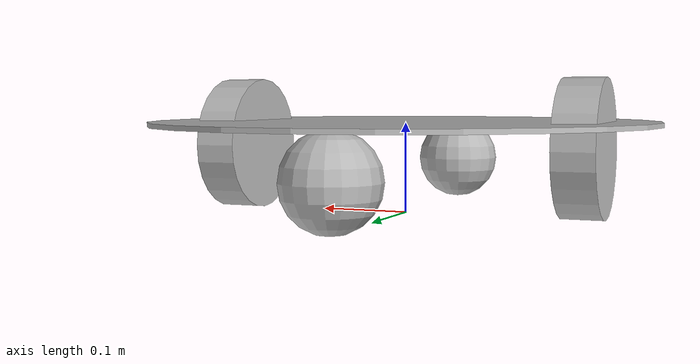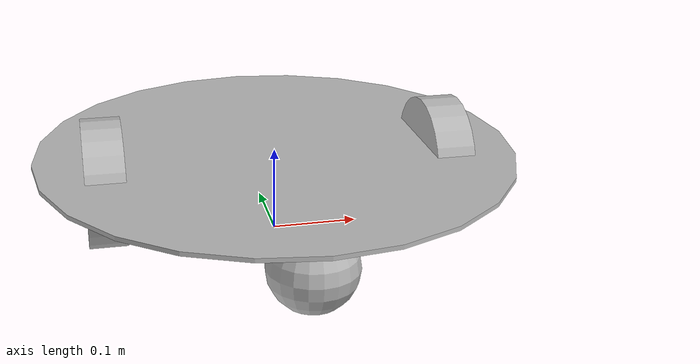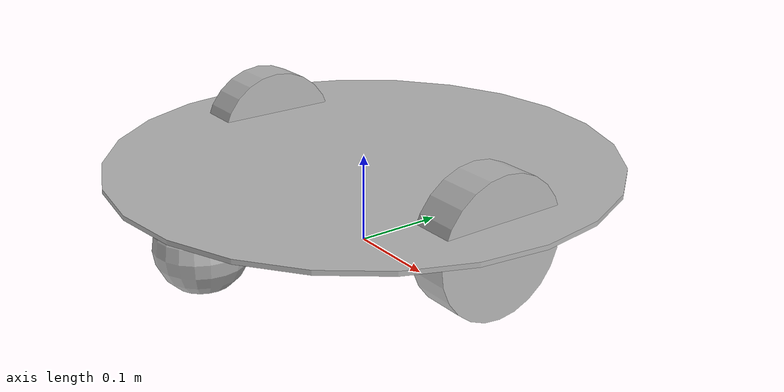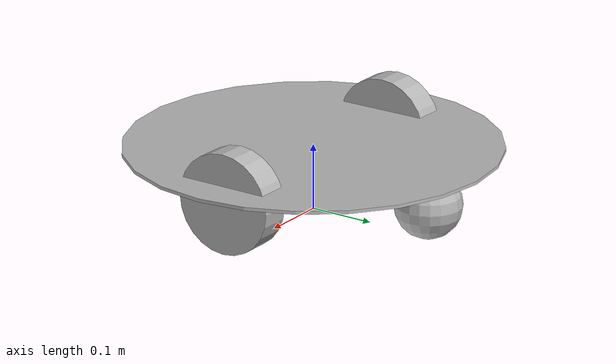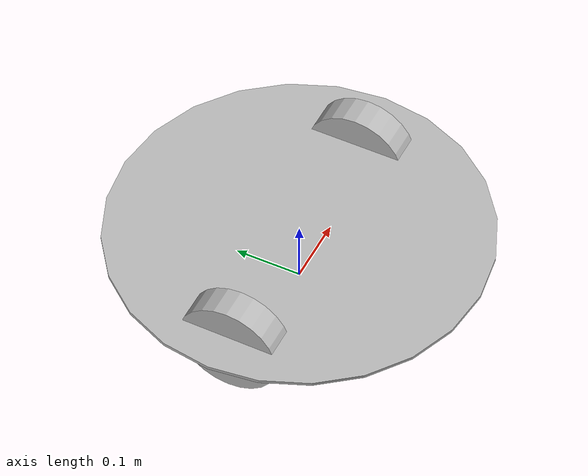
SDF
<?xml version='1.0'?>
<sdf version='1.4'>
  <model name="robot">

  <static>false</static> <!--this ignore physics of the robot-->

  <!--now we are going to create the base frame of the robot-->
  <link name='chassis'>
    <pose>0 0 .1 0 0 0</pose> <!--x y z roll pitch yaw (in radians)-->

    <!--Collision is about how the engine collision will identify the body, in this case, like a box with the size of 0.4 0.2 0.1-->

    <collision name='collision'>
      <geometry>
        <cylinder>
          <radius>.28</radius>
          <length>0.005</length>
        </cylinder>
      </geometry>
    </collision>

    <!--Visual is what we see. Generally the VISUAL and COLLISION are equal-->

    <visual name='visual'>
      <geometry>
        <cylinder>
          <radius>.28</radius>
          <length>0.005</length>
        </cylinder>
      </geometry>
    </visual>

    <collision name='caster1_collision'>
      <pose>0 -.2 -.05 0 0 0</pose>
      <geometry>
        <sphere>
          <radius>0.05</radius>
        </sphere>
      </geometry>

      <surface>
        <friction>
          <ode> <!--ODE = Open Dynamics Engine, is the engine motor that gazebo use to simulate the physics-->

            <mu>0</mu> <!-- is the Coulomb friction coefficient for the first friction direction-->
            <mu2>0</mu2> <!-- is the friction coefficient for the second friction direction (perpendicular to the first friction direction). -->

            <!--Search about these ones-->
            <slip1>1.0</slip1>
            <slip2>1.0</slip2>
          </ode>
        </friction>
      </surface>
    </collision>

    <visual name='caster1_visual'>
      <pose>0 -.2 -0.05 0 0 0</pose>
      <geometry>
        <sphere>
          <radius>0.05</radius>
        </sphere>
      </geometry>
    </visual>

     <collision name='caster2_collision'>
      <pose>0 .2 -0.05 0 0 0</pose>
      <geometry>
        <sphere>
          <radius>0.05</radius>
        </sphere>
      </geometry>

      <surface>
        <friction>
          <ode>
            <mu>0</mu>
            <mu2>0</mu2>
            <slip1>1.0</slip1>
            <slip2>1.0</slip2>
          </ode>
        </friction>
      </surface>

    </collision>

    <visual name='caster2_visual'>
      <pose>0 .2 -0.05 0 0 0</pose>
      <geometry>
        <sphere>
          <radius>0.05</radius>
        </sphere>
      </geometry>
    </visual>

  </link>

  <link name='left_wheel'>
    <pose>-.2 0 0.075 1.57 0 1.57</pose>

    <collision name='left_wheel_collision'>
      <geometry>
        <cylinder>
          <radius>0.075</radius>
          <length>0.045</length>
        </cylinder>
      </geometry>
    </collision>

    <visual name='left_wheel_visual'>
      <geometry>
        <cylinder>
          <radius>0.075</radius>
          <length>0.045</length>
        </cylinder>
      </geometry>
    </visual>
  </link>

  <link name='right_wheel'>
    <pose>.2 0 0.075 1.57 0 1.57</pose>

   <collision name='right_wheel_collision'>
      <geometry>
        <cylinder>
          <radius>0.075</radius>
          <length>0.045</length>
        </cylinder>
      </geometry>
    </collision>

    <visual name='right_wheel_visual'>
      <geometry>
        <cylinder>
          <radius>0.075</radius>
          <length>0.045</length>
        </cylinder>
      </geometry>
    </visual>
  </link>

  <joint type='revolute' name='left_wheel_joint'>
    <child>left_wheel</child>
    <parent>chassis</parent>
    <axis>
      <xyz>1 0 0</xyz> <!--Indicate in which axis will be the movement, in this case, in y axis-->
    </axis>
  </joint>

  <joint type='revolute' name='right_wheel_joint'>
    <child>right_wheel</child>
    <parent>chassis</parent>
    <axis>
      <xyz>0 0 0</xyz>
    </axis>
  </joint>

  </model>
</sdf>
